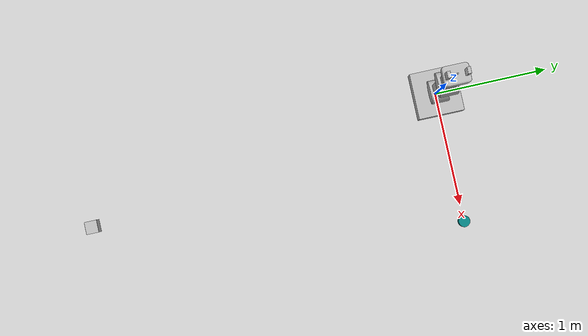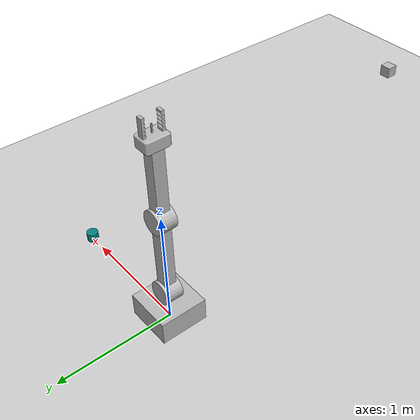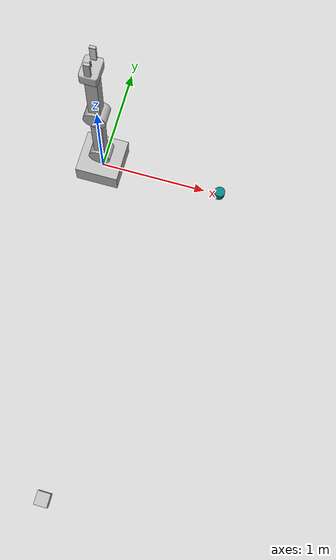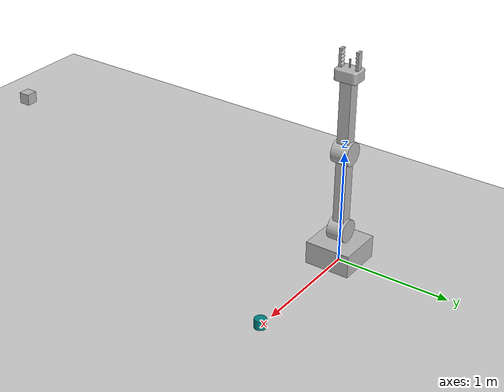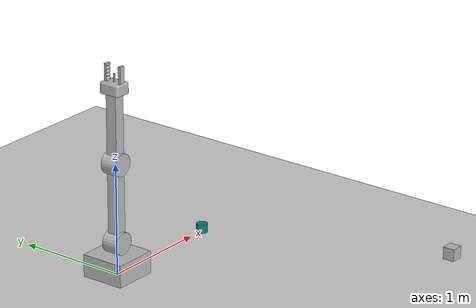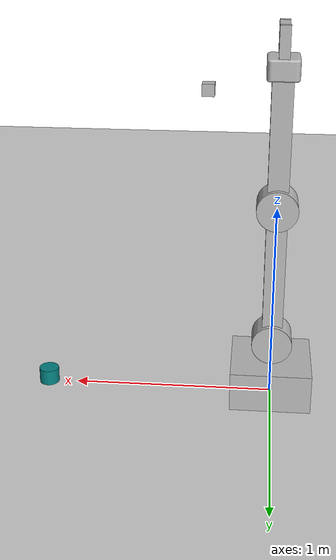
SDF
<?xml version="1.0" ?>
<sdf version="1.4">
    <world name="arm_world">
        <light name='sun' type='directional'>
            <cast_shadows>1</cast_shadows>
            <pose>0 0 10 0 -0 0</pose>
            <diffuse>0.8 0.8 0.8 1</diffuse>
            <specular>0.2 0.2 0.2 1</specular>
            <attenuation>
                <range>1000</range>
                <constant>0.9</constant>
                <linear>0.01</linear>
                <quadratic>0.001</quadratic>
            </attenuation>
            <direction>-0.5 0.1 -0.9</direction>
        </light>

        <!-- Ground Plane -->
        <include>
            <uri>model://ground_plane</uri>
        </include>

        <!-- ARM/GRIPPER -->
        <model name="arm">
            <plugin name="ArmPlugin" filename="libgazeboArmPlugin.so"/>
            <static>false</static>

            <link name="base">
                <pose>0 0 .1 0 0 0</pose>
                <inertial>
                    <pose>0 0 0 0 0 0</pose>
                    <inertia>
                        <ixx>0.01</ixx>
                        <ixy>0</ixy>
                        <ixz>0</ixz>
                        <iyy>0.01</iyy>
                        <iyz>0</iyz>
                        <izz>0.01</izz>
                    </inertia>
                    <mass>10</mass>
                </inertial>
                <collision name="collision">
                    <geometry>
                        <box>
                            <size>0.4 0.4 0.2</size>
                        </box>
                    </geometry>
                </collision>
                <visual name="visual">
                    <geometry>
                        <box>
                            <size>0.4 0.4 0.2</size>
                        </box>
                    </geometry>
                </visual>
            </link>

            <link name="joint1">
                <pose>0 0 0.3 0 1.5707 1.5707</pose>
                <collision name="collision">
                    <geometry>
                        <cylinder>
                            <radius>.1</radius>
                            <length>.15</length>
                        </cylinder>
                    </geometry>
                </collision>
                <visual name="visual">
                    <geometry>
                        <cylinder>
                            <radius>.1</radius>
                            <length>.15</length>
                        </cylinder>
                    </geometry>
                </visual>
            </link>

            <link name="link1">
                <pose>0 0 .66 0 0 0</pose>
                <inertial>
                    <mass>.25</mass>
                    <inertia>
                        <!-- interias are tricky to compute -->
                        <ixx>0.083</ixx>
                        <!-- for a box: ixx = 0.083 * mass * (y*y + z*z) -->
                        <ixy>0.0</ixy>
                        <!-- for a box: ixy = 0 -->
                        <ixz>0.0</ixz>
                        <!-- for a box: ixz = 0 -->
                        <iyy>0.083</iyy>
                        <!-- for a box: iyy = 0.083 * mass * (x*x + z*z) -->
                        <iyz>0.0</iyz>
                        <!-- for a box: iyz = 0 -->
                        <izz>0.083</izz>
                        <!-- for a box: izz = 0.083 * mass * (x*x + y*y) -->
                    </inertia>
                </inertial>
                <collision name="collision">
                    <geometry>
                        <box>
                            <size>.1 .1 .6</size>
                        </box>
                    </geometry>
                </collision>
                <visual name="visual">
                    <geometry>
                        <box>
                            <size>.1 .1 .6</size>
                        </box>
                    </geometry>
                </visual>
            </link>

            <link name="joint2">
                <pose>0 0 1.01 0 1.5707 1.5707</pose>
                <collision name="collision">
                    <geometry>
                        <cylinder>
                            <radius>.1</radius>
                            <length>.15</length>
                        </cylinder>
                    </geometry>
                </collision>
                <visual name="visual">
                    <geometry>
                        <cylinder>
                            <radius>.1</radius>
                            <length>.15</length>
                        </cylinder>
                    </geometry>
                </visual>
            </link>

            <link name="link2">
                <pose>0 0 1.37 0 0 0</pose>
                <inertial>
                    <mass>.2</mass>
                    <inertia>
                        <ixx>0.083</ixx>
                        <ixy>0.0</ixy>
                        <ixz>0.0</ixz>
                        <iyy>0.083</iyy>
                        <iyz>0.0</iyz>
                        <izz>0.083</izz>
                    </inertia>
                </inertial>
                <collision name="collision2">
                    <geometry>
                        <box>
                            <size>.1 .1 .6</size>
                        </box>
                    </geometry>
                </collision>
                <visual name="visual2">
                    <geometry>
                        <box>
                            <size>.1 .1 .6</size>
                        </box>
                    </geometry>
                </visual>
            </link>

            <link name="gripperbase">
                <pose>0 0 1.68 0 0 0</pose>
                <inertial>
                    <mass>0.3</mass>
                    <inertia>
                        <ixx>0.0001</ixx>
                        <ixy>0</ixy>
                        <ixz>0</ixz>
                        <iyy>0.0002</iyy>
                        <iyz>0</iyz>
                        <izz>0.0001</izz>
                    </inertia>
                </inertial>
                <visual name="gripper_link">
                    <geometry>
                        <mesh>
                            <uri>file://meshes/gripper/gripper_base.dae</uri>
                        </mesh>
                    </geometry>
                </visual>
                <collision name="gripper_link">
                    <geometry>
                        <mesh>
                            <uri>file://meshes/gripper/gripper_base.dae</uri>
                        </mesh>
                    </geometry>
                </collision>
            </link>

            <link name="gripper_middle">
                <pose>0 0 1.77 0 0 0</pose>
                <collision name="middle_collision">
                    <geometry>
                        <box>
                            <size>.01 .01 .07</size>
                        </box>
                    </geometry>
                </collision>
                <visual name="middle_vision">
                    <geometry>
                        <box>
                            <size>.01 .01 .07</size>
                        </box>
                    </geometry>
                </visual>
            </link>

            <link name="gripper_right">
                <pose>0 0.075 1.805 0 -1.57 -3.14</pose>
                <inertial>
                    <mass>0.1</mass>
                    <inertia>
                        <ixx>0.02</ixx>
                        <ixy>0</ixy>
                        <ixz>0</ixz>
                        <iyy>0.0002</iyy>
                        <iyz>0</iyz>
                        <izz>0.0002</izz>
                    </inertia>
                </inertial>
                <visual name="right_gripper">
                    <geometry>
                        <mesh>
                            <uri>file://meshes/gripper/finger_right.dae</uri>
                        </mesh>
                    </geometry>
                </visual>
                <collision name="right_gripper">
                    <geometry>
                        <mesh>
                            <uri>file://meshes/gripper/finger_right.dae</uri>
                        </mesh>
                    </geometry>
                </collision>
            </link>

            <link name="gripper_left">
                <pose>0 -0.075 1.805 0 -1.57 -3.14</pose>
                <inertial>
                    <mass>0.1</mass>
                    <inertia>
                        <ixx>0.002</ixx>
                        <ixy>0</ixy>
                        <ixz>0</ixz>
                        <iyy>0.0002</iyy>
                        <iyz>0</iyz>
                        <izz>0.0002</izz>
                    </inertia>
                </inertial>
                <visual name="left_gripper">
                    <geometry>
                        <mesh>
                            <uri>file://meshes/gripper/finger_left.dae</uri>
                        </mesh>
                    </geometry>
                </visual>
                <collision name="left_gripper">
                    <geometry>
                        <mesh>
                            <uri>file://meshes/gripper/finger_left.dae</uri>
                        </mesh>
                    </geometry>
                </collision>
            </link>

            <joint name="base" type="revolute">
                <pose>0 0 0 0 0 0</pose>
                <child>base</child>
                <parent>world</parent>
                <axis>
                    <limit>
                        <lower>-2</lower>
                        <upper>2</upper>
                    </limit>
                    <xyz>0 0 1</xyz>
                </axis>
            </joint>

            <joint name="joint1" type="revolute">
                <pose>0 0 0 0 0 0</pose>
                <child>joint1</child>
                <parent>base</parent>
                <axis>
                    <limit>
                        <lower>-2</lower>
                        <upper>2</upper>
                    </limit>
                    <xyz>0 1 0</xyz>
                </axis>
            </joint>

            <joint name="link1-joint1" type="fixed">
                <pose>0 0 -0.05 0 0 0</pose>
                <child>link1</child>
                <parent>joint1</parent>
                <axis>
                    <limit>
                        <lower>0</lower>
                        <upper>0</upper>
                    </limit>
                    <xyz>0 1 0</xyz>
                </axis>
            </joint>

            <joint name="joint2" type="revolute">
                <pose>0 0 -0.05 0 0 0</pose>
                <child>joint2</child>
                <parent>link1</parent>
                <axis>
                    <limit>
                        <lower>-2</lower>
                        <upper>2</upper>
                    </limit>
                    <xyz>0 1 0</xyz>
                </axis>
            </joint>

            <joint name="link2-joint2" type="fixed">
                <pose>0 0 -0.05 0 0 0</pose>
                <child>link2</child>
                <parent>joint2</parent>
                <axis>
                    <limit>
                        <lower>0</lower>
                        <upper>0</upper>
                    </limit>
                    <xyz>0 1 0</xyz>
                </axis>
            </joint>

            <joint name="gripper_left" type="revolute">
                <pose>0 0 -0.05 0 0 0</pose>
                <child>gripper_left</child>
                <parent>gripperbase</parent>
                <axis>
                    <limit>
                        <lower>0</lower>
                        <upper>0</upper>
                    </limit>
                    <xyz>0 1 0</xyz>
                </axis>
            </joint>
            <joint name="gripper_right" type="revolute">
                <pose>0 0 -0.05 0 0 0</pose>
                <child>gripper_right</child>
                <parent>gripperbase</parent>
                <axis>
                    <limit>
                        <lower>0</lower>
                        <upper>0</upper>
                    </limit>
                    <xyz>0 1 0</xyz>
                </axis>
            </joint>

            <joint name="gripperbase" type="fixed">
                <pose>0 0 -0.05 0 0 0</pose>
                <parent>link2</parent>
                <child>gripperbase</child>
                <axis>
                    <xyz>0 1 0</xyz>
                </axis>
            </joint>

            <joint name="gripper_middle" type="fixed">
                <pose>0 0 0 0 0 0</pose>
                <parent>gripperbase</parent>
                <child>gripper_middle</child>
                <axis>
                    <xyz>0 1 0</xyz>
                </axis>
            </joint>

            <sensor name='gripper_contact' type='contact'>
                <contact>
                    <collision>gripper_collision</collision>
                </contact>
            </sensor>
        </model>

        <!-- CAMERA -->
        <model name="camera">
            <link name="link">
                <gravity>false</gravity>
                <pose>0.5 -3.0 0.85 0 0 1.57</pose>
                <inertial>
                    <mass>0.1</mass>
                </inertial>
                <visual name="visual">
                    <geometry>
                        <box>
                            <size>0.1 0.1 0.1</size>
                        </box>
                    </geometry>
                </visual>
                <sensor name="camera" type="camera">
                    <camera>
                        <horizontal_fov>1.047</horizontal_fov>
                        <image>
                            <width>64</width>
                            <height>64</height>
                        </image>
                        <clip>
                            <near>0.1</near>
                            <far>100</far>
                        </clip>
                    </camera>
                    <always_on>1</always_on>
                    <update_rate>10</update_rate>
                    <visualize>true</visualize>
                </sensor>
            </link>
        </model>

        <!-- TUBE/COLLISION -->
        <model name="tube">
            <link name="tube_link">
                <pose>1.15 0 0 0 0 0</pose>

                <collision name="tube_collision">
                    <geometry>
                        <cylinder>
                            <radius>0.05</radius>
                            <length>0.15</length>
                        </cylinder>
                    </geometry>
                </collision>

                <visual name="visual">
                    <geometry>
                        <cylinder>
                            <radius>0.05</radius>
                            <length>0.15</length>
                        </cylinder>
                    </geometry>
                    <material>
                        <ambient>0.5 0.5 0.5 1</ambient>
                        <diffuse>0.01 0.5 0.5 1</diffuse>
                        <specular>0.01 0.01 0.01 1</specular>
                        <emissive>0.1 0.1 0 0</emissive>
                        <shader type='vertex'>
                            <normal_map>__default__</normal_map>
                        </shader>
                    </material>
                </visual>

                <sensor name='my_contact' type='contact'>
                    <contact>
                        <collision>tube_collision</collision>
                    </contact>
                </sensor>
            </link>

            <joint name="tube_joint" type="fixed">
                <pose>0 0 0 0 0 0</pose>
                <child>link</child>
                <parent>world</parent>
                <axis>
                    <xyz>0 0 1</xyz>
                </axis>
            </joint>
            <plugin name="PropPlugin" filename="libgazeboPropPlugin.so"/>
        </model>

    </world>
</sdf>
